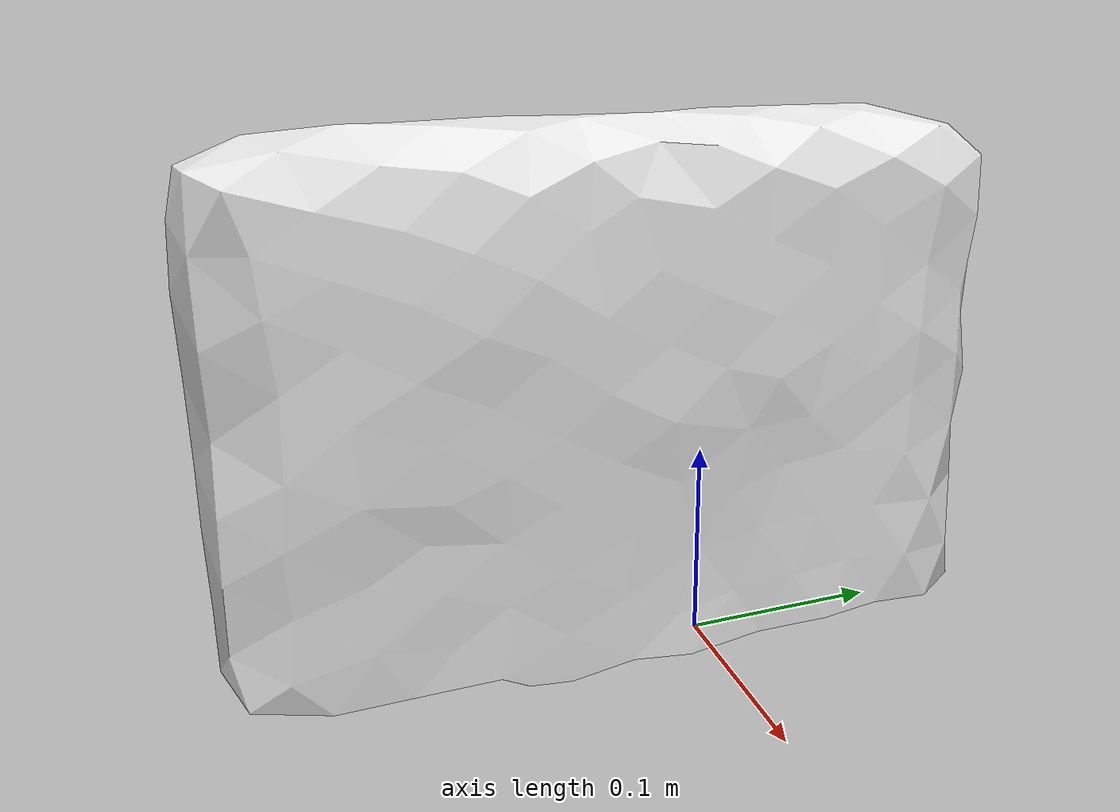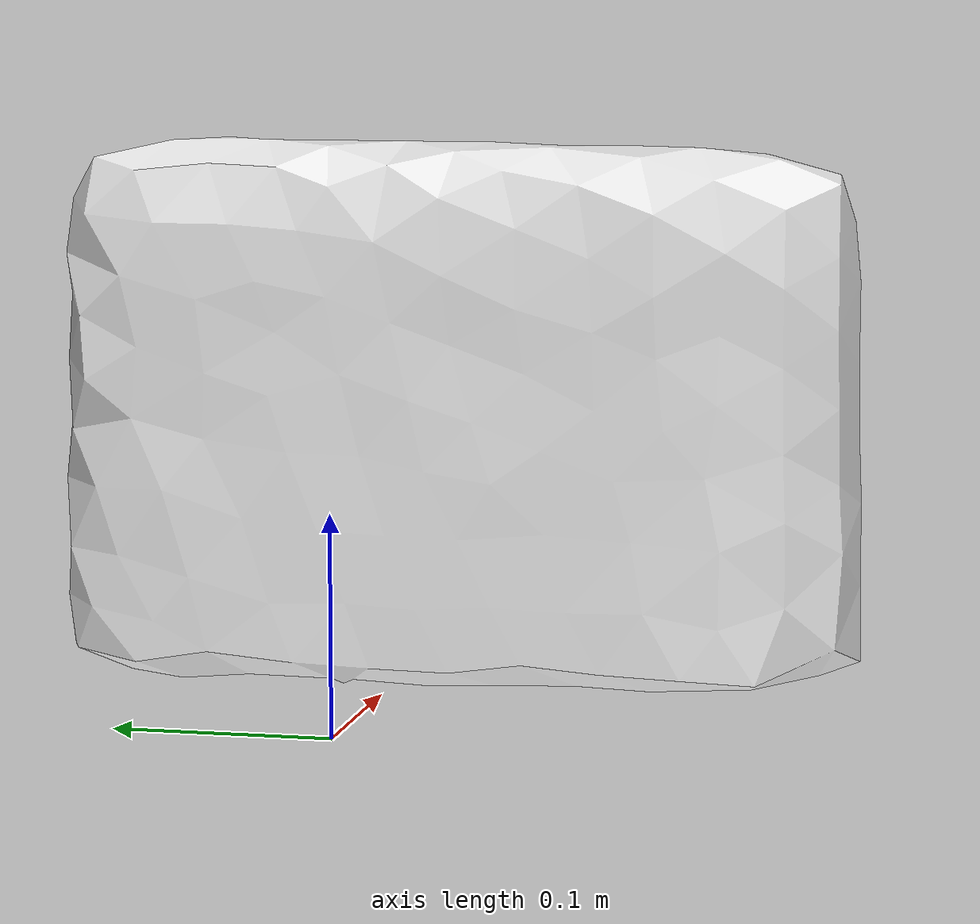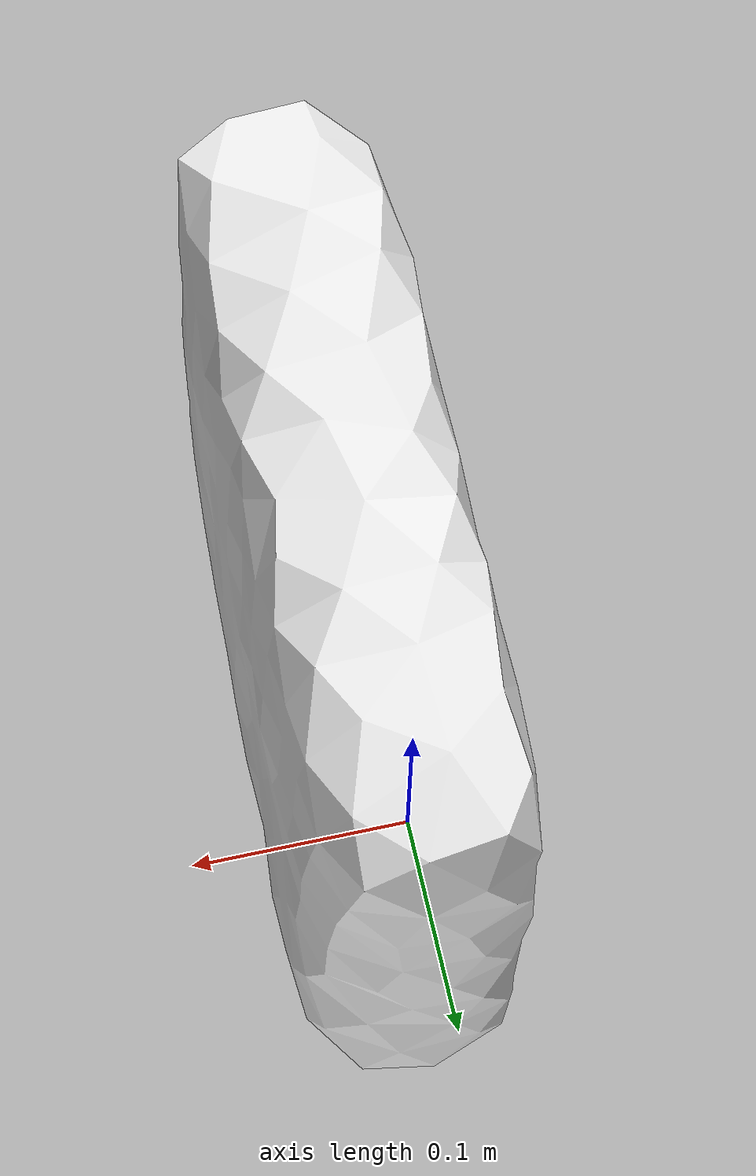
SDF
<?xml version="1.0" ?><sdf version="1.5"><model name="gigabyte-box">
<link name="link">
<pose>0 0 0 0 0 0</pose>
<inertial>
<pose>0.018348 -0.054483 0.143167 0 0 0</pose>
<mass>0.22</mass>
<inertia>
<ixx>0.00334089</ixx>
<ixy>0</ixy><iyy>0.00125099</iyy>
<ixz>0</ixz><iyz>0</iyz><izz>0.00247009</izz>
</inertia>
</inertial>
<visual name="visual">
<pose>0 0 0 0 0 0</pose>
<geometry><mesh><uri>model://gigabyte-box/meshes/gigabyte-box.dae</uri></mesh></geometry>
<material><script><uri>file://media/materials/scripts/gazebo.material</uri><name>Gazebo/WhiteGlow</name></script></material></visual>
<collision name="collision"><pose>0 0 0 0 0 0</pose><geometry><mesh><uri>model://gigabyte-box/meshes/gigabyte-box.dae</uri></mesh></geometry>
<surface><friction><ode><mu>1.000000</mu><mu2>1.000000</mu2></ode></friction></surface>
</collision></link></model></sdf>
